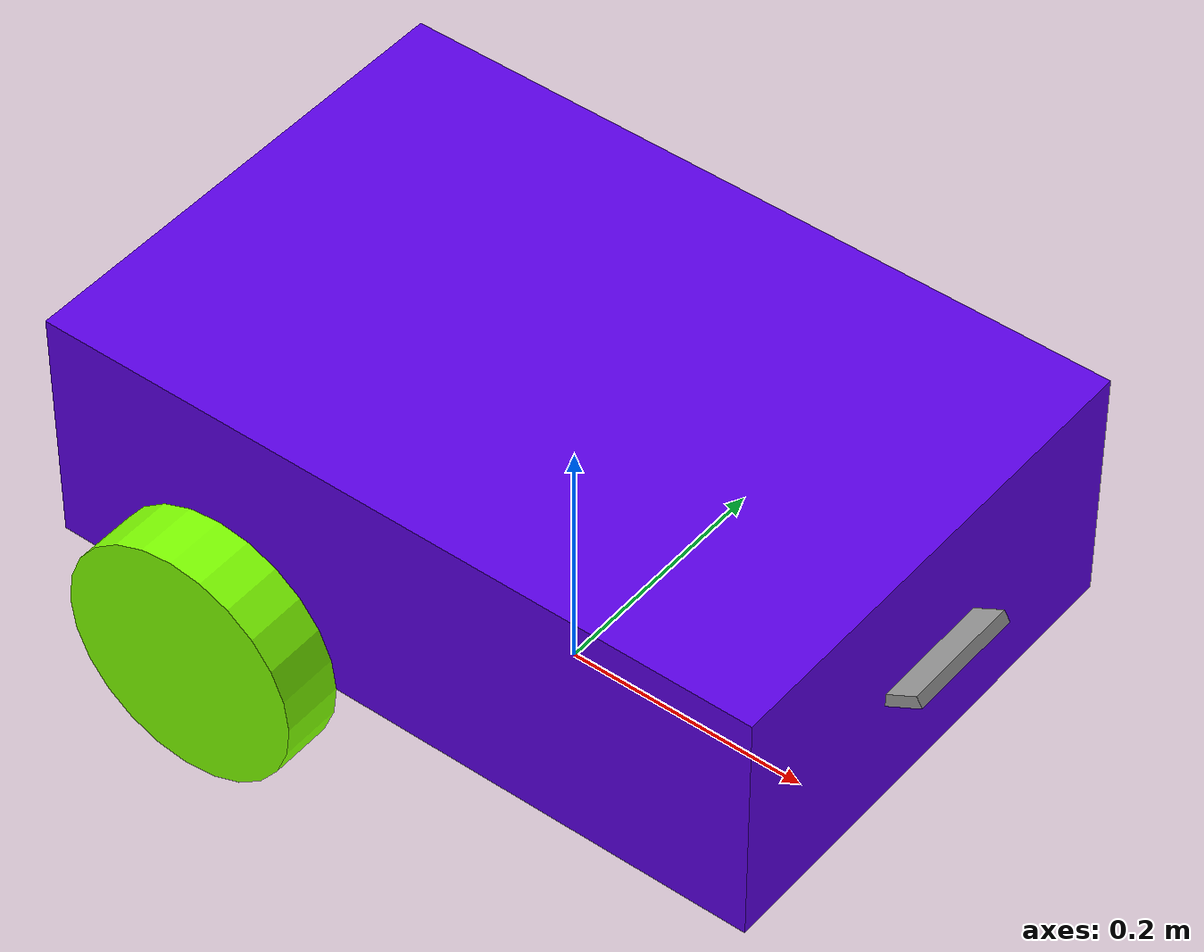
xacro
<?xml version="1.0"?>
<robot name="my_robot" xmlns:xacro="http://www.ros.org/wiki/xacro">
  <xacro:include filename="comman_properties.xacro"/>
  <xacro:include filename="mobile_base.xacro"/>
  <xacro:include filename="mobile_base_gazebo.xacro"/>
  <xacro:include filename="camera.xacro"/>

</robot>

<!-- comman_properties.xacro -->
<robot xmlns:xacro="http://www.ros.org/wiki/xacro">

  <material name="green">
    <color rgba="0.36 0 0.9 1"/>
  </material>

  <material name="red">
    <color rgba="0.5 1 0 1"/>
  </material>

  <xacro:macro name="box_inertia" params="m l w h xyz rpy">
    <inertial>
      <origin xyz="${xyz}" rpy="${rpy}"/>
      <mass value="${m}"/>
      <inertia ixx="${(1.0/12.0) * m * (l*l + h*h)}" ixy="0" ixz="0"
               iyy="${(1.0/12.0) * m * (l*l + w*w)}" iyz="0"
               izz="${(1.0/12.0) * m * (w*w + h*h)}"/>
    </inertial>
  </xacro:macro>

  <xacro:macro name="cylinder_inertia" params="m r l xyz rpy">
    <inertial>
      <origin xyz="${xyz}" rpy="${rpy}"/>
      <mass value="${m}"/>
      <inertia ixx="${(1.0/12.0) * m * (3*r*r + l*l)}" ixy="0" ixz="0"
               iyy="${(1.0/12.0) * m * (3*r*r + l*l)}" iyz="0"
               izz="${(1.0/2.0) * m * r*r}"/>
    </inertial>
  </xacro:macro>

  <xacro:macro name="sphere_inertia" params="m r xyz rpy">
    <inertial>
      <origin xyz="${xyz}" rpy="${rpy}"/>
      <mass value="${m}"/>
      <inertia ixx="${(2.0/5.0) * m * r*r}" ixy="0" ixz="0"
               iyy="${(2.0/5.0) * m * r*r}" iyz="0"
               izz="${(2.0/5.0) * m * r*r}"/>
    </inertial>
  </xacro:macro>

</robot>

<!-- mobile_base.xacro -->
<robot xmlns:xacro="http://www.ros.org/wiki/xacro">

  <xacro:property name="base_length" value="0.6"/>
  <xacro:property name="base_width" value="0.4"/>
  <xacro:property name="base_height" value="0.2"/>
  <xacro:property name="wheel_radius" value="0.1"/>
  <xacro:property name="wheel_length" value="0.05"/>

  <link name="base_link">
    <visual>
      <geometry>
        <box size="${base_length} ${base_width} ${base_height}"/>
      </geometry>
      <origin xyz="0 0 ${base_height/2.0}" rpy="0 0 0"/>
      <material name="green"/>
    </visual>
    <collision>
      <geometry>
        <box size="${base_length} ${base_width} ${base_height}"/>
      </geometry>
      <origin xyz="0 0 ${base_height/2.0}" rpy="0 0 0"/>
    </collision>
    <xacro:box_inertia m="5.0" l="${2*base_length}" w="${2*base_width}" h="${base_height}" xyz="0 0 ${base_height/2.0}" rpy="0 0 0"/>
  </link>

  <xacro:macro name="wheel_link" params="prefix">
    <link name="${prefix}_wheel_link">
     <visual>
      <geometry>
        <cylinder radius="${wheel_radius}" length="${wheel_length}"/>
      </geometry>
      <origin xyz="0 0 0" rpy="${pi / 2.0} 0 0"/>
      <material name="red"/>
    </visual>
    <collision>
      <geometry>
        <cylinder radius="${wheel_radius}" length="${wheel_length}"/>
      </geometry>
      <origin xyz="0 0 0" rpy="${pi / 2.0} 0 0"/>
    </collision>
    <xacro:cylinder_inertia m="1.0" r="${2*wheel_radius}" l="${2*wheel_length}" xyz="0 0 0" rpy="${pi / 2.0} 0 0"/>
    </link>
  </xacro:macro>

  <xacro:wheel_link prefix="right"/>
  <xacro:wheel_link prefix="left"/>

  <link name="caster_wheel_link">
    <visual>
      <geometry>
        <sphere radius="${wheel_radius * 0.5}" />
      </geometry>
      <origin xyz="0 0 0" rpy="0 0 0"/>
      <material name="red"/>
    </visual>
    <collision>
      <geometry>
        <sphere radius="${wheel_radius * 0.5}" />
      </geometry>
      <origin xyz="0 0 0" rpy="0 0 0"/>
    </collision>
    <xacro:sphere_inertia m="0.5" r="${2.0*wheel_radius * 0.5}" xyz="0 0 0" rpy="0 0 0"/>
  </link>

  <link name="base_footprint" />

  <joint name="base_right_wheel_joint" type="continuous">
    <parent link="base_link"/>
    <child link="right_wheel_link"/>
    <origin xyz="${-base_length/4.0} ${-(base_width+ 0.05) / 2.0} 0" rpy="0 0 0"/>
    <axis xyz="0 1 0"/>
  </joint>
  <joint name="base_left_wheel_joint" type="continuous">
    <parent link="base_link"/>
    <child link="left_wheel_link"/>
    <origin xyz="${-base_length/4.0} ${(base_width+ 0.05) / 2.0} 0" rpy="0 0 0"/>
    <axis xyz="0 1 0"/>
  </joint>
  <joint name="caster_wheel_joint" type="fixed">
    <parent link="base_link"/>
    <child link="caster_wheel_link"/>
    <origin xyz="${base_length / 3.0} 0 ${-wheel_radius * 0.5}" rpy="0 0 0"/>
    <axis xyz="0 0 0"/>
  </joint>
  <joint name="base_footprint_joint" type="fixed">
    <parent link="base_footprint"/>
    <child link="base_link"/>
    <origin xyz="0 0 ${wheel_radius}" rpy="0 0 0"/>
    <axis xyz="0 0 0"/>
  </joint>

</robot>

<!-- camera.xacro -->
<robot xmlns:xacro="http://www.ros.org/wiki/xacro">

   <xacro:property name="camera_length" value="0.01"/>
   <xacro:property name="camera_width" value="0.1"/>
   <xacro:property name="camera_height" value="0.05"/>

  <link name="camera_link">
    <visual>
      <geometry>
        <box size="${camera_length} ${camera_width} ${camera_height}"/>
      </geometry>
      <material name="grey"/>
      <origin xyz="0 0 0" rpy="0 0 0"/>
      <collision>
        <geometry>
          <box size="${camera_length} ${camera_width} ${camera_height}"/>
        </geometry>
        <origin xyz="0 0 0" rpy="0 0 0"/>
      </collision>
        <xacro:box_inertia m="0.5" l="${camera_length}" w="${camera_width}" h="${camera_height}" xyz="0 0 0" rpy="0 0 0"/>
    </visual>
  </link>

  <joint name="base_camera_joint" type="fixed">
    <parent link="base_link"/>
    <child link="camera_link"/>
    <origin xyz="${base_length/2.0 + camera_length/2.0} 0 ${base_height/2.0}" rpy="0 ${pi/3} 0"/>
  </joint>

  <gazebo reference="camera_link">
    <material>Gazebo/Grey</material>
    <sensor name="camera_sensor" type="camera">
      <pose>0 0 0 0 0 0</pose>
      <visualize>true</visualize>
      <update_rate>10.0</update_rate>
      <plugin name="camera_controller" filename="libgazebo_ros_camera.so">
        <frame_name>camera_link</frame_name>
      </plugin>

    </sensor>
  </gazebo>

</robot>
